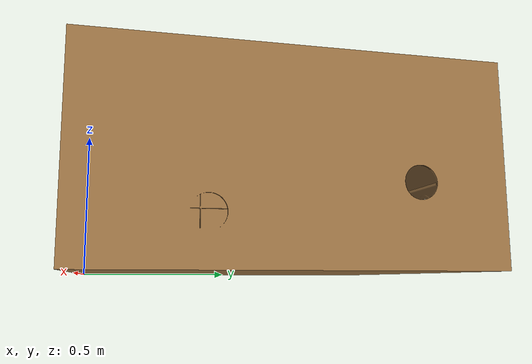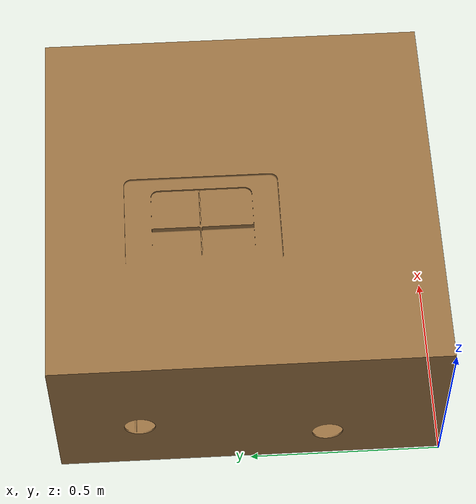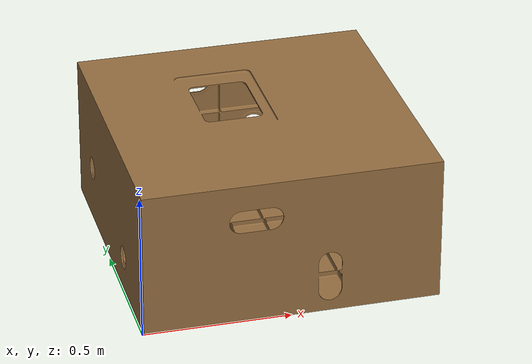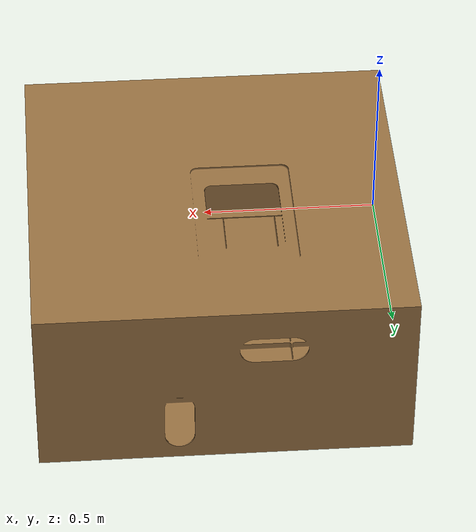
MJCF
<mujoco model="tank_model">
  <compiler angle="degree"/>

  <asset>
    <material name="tank_material" rgba="0.58 0.43 0.25 1"/>
    <mesh name="visual_mesh" file="ZNJQRBS-YOUXIANG.stl" scale="0.001 0.001 0.001"/>
    <!-- Convex approximation of one visible bottom rib: 880 mm long,
         9 mm wide at the base, 3 mm wide at the 23 mm top surface. -->
    <mesh name="bottom_rib_collision_mesh"
      vertex="-0.44 -0.0045 -0.01  0.44 -0.0045 -0.01  0.44 0.0045 -0.01  -0.44 0.0045 -0.01
              -0.44 -0.0015 0.01   0.44 -0.0015 0.01   0.44 0.0015 0.01   -0.44 0.0015 0.01"
      face="0 2 1  0 3 2  4 5 6  4 6 7  0 1 5  0 5 4
            1 2 6  1 6 5  2 3 7  2 7 6  3 0 4  3 4 7"/>
    <mesh name="collision_000" file="collision/youxiang_coacd_000.obj" scale="0.001 0.001 0.001"/>
    <mesh name="collision_001" file="collision/youxiang_coacd_001.obj" scale="0.001 0.001 0.001"/>
    <mesh name="collision_002" file="collision/youxiang_coacd_002.obj" scale="0.001 0.001 0.001"/>
    <mesh name="collision_003" file="collision/youxiang_coacd_003.obj" scale="0.001 0.001 0.001"/>
    <mesh name="collision_004" file="collision/youxiang_coacd_004.obj" scale="0.001 0.001 0.001"/>
    <mesh name="collision_005" file="collision/youxiang_coacd_005.obj" scale="0.001 0.001 0.001"/>
    <mesh name="collision_007" file="collision/youxiang_coacd_007.obj" scale="0.001 0.001 0.001"/>
    <mesh name="collision_008" file="collision/youxiang_coacd_008.obj" scale="0.001 0.001 0.001"/>
    <mesh name="collision_009" file="collision/youxiang_coacd_009.obj" scale="0.001 0.001 0.001"/>
    <mesh name="collision_011" file="collision/youxiang_coacd_011.obj" scale="0.001 0.001 0.001"/>
    <mesh name="collision_012" file="collision/youxiang_coacd_012.obj" scale="0.001 0.001 0.001"/>
    <mesh name="collision_013" file="collision/youxiang_coacd_013.obj" scale="0.001 0.001 0.001"/>
    <mesh name="collision_014" file="collision/youxiang_coacd_014.obj" scale="0.001 0.001 0.001"/>
    <mesh name="collision_015" file="collision/youxiang_coacd_015.obj" scale="0.001 0.001 0.001"/>
    <mesh name="collision_016" file="collision/youxiang_coacd_016.obj" scale="0.001 0.001 0.001"/>
    <mesh name="collision_018" file="collision/youxiang_coacd_018.obj" scale="0.001 0.001 0.001"/>
    <mesh name="collision_019" file="collision/youxiang_coacd_019.obj" scale="0.001 0.001 0.001"/>
    <mesh name="collision_020" file="collision/youxiang_coacd_020.obj" scale="0.001 0.001 0.001"/>
    <mesh name="collision_021" file="collision/youxiang_coacd_021.obj" scale="0.001 0.001 0.001"/>
    <mesh name="collision_022" file="collision/youxiang_coacd_022.obj" scale="0.001 0.001 0.001"/>
    <mesh name="collision_023" file="collision/youxiang_coacd_023.obj" scale="0.001 0.001 0.001"/>
    <mesh name="collision_024" file="collision/youxiang_coacd_024.obj" scale="0.001 0.001 0.001"/>
    <mesh name="collision_026" file="collision/youxiang_coacd_026.obj" scale="0.001 0.001 0.001"/>
    <mesh name="collision_027" file="collision/youxiang_coacd_027.obj" scale="0.001 0.001 0.001"/>
    <mesh name="collision_028" file="collision/youxiang_coacd_028.obj" scale="0.001 0.001 0.001"/>
    <mesh name="collision_029" file="collision/youxiang_coacd_029.obj" scale="0.001 0.001 0.001"/>
    <mesh name="collision_030" file="collision/youxiang_coacd_030.obj" scale="0.001 0.001 0.001"/>
    <mesh name="collision_031" file="collision/youxiang_coacd_031.obj" scale="0.001 0.001 0.001"/>
    <mesh name="collision_032" file="collision/youxiang_coacd_032.obj" scale="0.001 0.001 0.001"/>
    <mesh name="collision_033" file="collision/youxiang_coacd_033.obj" scale="0.001 0.001 0.001"/>
    <mesh name="collision_034" file="collision/youxiang_coacd_034.obj" scale="0.001 0.001 0.001"/>
    <mesh name="collision_035" file="collision/youxiang_coacd_035.obj" scale="0.001 0.001 0.001"/>
    <mesh name="collision_036" file="collision/youxiang_coacd_036.obj" scale="0.001 0.001 0.001"/>
    <mesh name="collision_037" file="collision/youxiang_coacd_037.obj" scale="0.001 0.001 0.001"/>
    <mesh name="collision_038" file="collision/youxiang_coacd_038.obj" scale="0.001 0.001 0.001"/>
    <mesh name="collision_039" file="collision/youxiang_coacd_039.obj" scale="0.001 0.001 0.001"/>
    <mesh name="collision_040" file="collision/youxiang_coacd_040.obj" scale="0.001 0.001 0.001"/>
    <mesh name="collision_041" file="collision/youxiang_coacd_041.obj" scale="0.001 0.001 0.001"/>
    <mesh name="collision_042" file="collision/youxiang_coacd_042.obj" scale="0.001 0.001 0.001"/>
    <mesh name="collision_043" file="collision/youxiang_coacd_043.obj" scale="0.001 0.001 0.001"/>
    <mesh name="collision_044" file="collision/youxiang_coacd_044.obj" scale="0.001 0.001 0.001"/>
    <mesh name="collision_045" file="collision/youxiang_coacd_045.obj" scale="0.001 0.001 0.001"/>
    <mesh name="collision_046" file="collision/youxiang_coacd_046.obj" scale="0.001 0.001 0.001"/>
    <mesh name="collision_047" file="collision/youxiang_coacd_047.obj" scale="0.001 0.001 0.001"/>
    <mesh name="collision_048" file="collision/youxiang_coacd_048.obj" scale="0.001 0.001 0.001"/>
    <mesh name="collision_049" file="collision/youxiang_coacd_049.obj" scale="0.001 0.001 0.001"/>
    <mesh name="collision_050" file="collision/youxiang_coacd_050.obj" scale="0.001 0.001 0.001"/>
    <mesh name="collision_051" file="collision/youxiang_coacd_051.obj" scale="0.001 0.001 0.001"/>
    <mesh name="collision_052" file="collision/youxiang_coacd_052.obj" scale="0.001 0.001 0.001"/>
    <mesh name="collision_053" file="collision/youxiang_coacd_053.obj" scale="0.001 0.001 0.001"/>
    <mesh name="collision_054" file="collision/youxiang_coacd_054.obj" scale="0.001 0.001 0.001"/>
    <mesh name="collision_055" file="collision/youxiang_coacd_055.obj" scale="0.001 0.001 0.001"/>
    <mesh name="collision_056" file="collision/youxiang_coacd_056.obj" scale="0.001 0.001 0.001"/>
    <mesh name="collision_057" file="collision/youxiang_coacd_057.obj" scale="0.001 0.001 0.001"/>
    <mesh name="collision_058" file="collision/youxiang_coacd_058.obj" scale="0.001 0.001 0.001"/>
    <mesh name="collision_059" file="collision/youxiang_coacd_059.obj" scale="0.001 0.001 0.001"/>
    <mesh name="collision_060" file="collision/youxiang_coacd_060.obj" scale="0.001 0.001 0.001"/>
    <mesh name="collision_061" file="collision/youxiang_coacd_061.obj" scale="0.001 0.001 0.001"/>
    <mesh name="collision_062" file="collision/youxiang_coacd_062.obj" scale="0.001 0.001 0.001"/>
    <mesh name="collision_063" file="collision/youxiang_coacd_063.obj" scale="0.001 0.001 0.001"/>
  </asset>

  <worldbody>
    <body name="root">
      <geom name="visual" type="mesh" mesh="visual_mesh" material="tank_material" contype="0" conaffinity="0" group="0"/>
      <!-- The visual base plate spans z=0..0.003 m. Its four COACD floor hulls
           (006, 010, 017, 025) rise as high as 0.033 m and cannot be used as
           the support surface for free objects. -->
      <geom name="bottom_collision" type="box" pos="0.5 0.5 -0.047"
        size="0.5 0.5 0.05" group="3"/>
      <geom name="bottom_rib_horizontal_0" type="mesh" mesh="bottom_rib_collision_mesh"
        pos="0.505 0.2 0.013" group="3"/>
      <geom name="bottom_rib_horizontal_1" type="mesh" mesh="bottom_rib_collision_mesh"
        pos="0.505 0.4 0.013" group="3"/>
      <geom name="bottom_rib_horizontal_2" type="mesh" mesh="bottom_rib_collision_mesh"
        pos="0.505 0.6 0.013" group="3"/>
      <geom name="bottom_rib_horizontal_3" type="mesh" mesh="bottom_rib_collision_mesh"
        pos="0.505 0.8 0.013" group="3"/>
      <geom name="bottom_rib_vertical_0" type="mesh" mesh="bottom_rib_collision_mesh"
        pos="0.145 0.5 0.013" euler="0 0 90" group="3"/>
      <geom name="bottom_rib_vertical_1" type="mesh" mesh="bottom_rib_collision_mesh"
        pos="0.295 0.5 0.013" euler="0 0 90" group="3"/>
      <geom name="bottom_rib_vertical_2" type="mesh" mesh="bottom_rib_collision_mesh"
        pos="0.445 0.5 0.013" euler="0 0 90" group="3"/>
      <geom name="bottom_rib_vertical_3" type="mesh" mesh="bottom_rib_collision_mesh"
        pos="0.565 0.5 0.013" euler="0 0 90" group="3"/>
      <geom name="bottom_rib_vertical_4" type="mesh" mesh="bottom_rib_collision_mesh"
        pos="0.715 0.5 0.013" euler="0 0 90" group="3"/>
      <geom name="bottom_rib_vertical_5" type="mesh" mesh="bottom_rib_collision_mesh"
        pos="0.865 0.5 0.013" euler="0 0 90" group="3"/>
      <geom name="collision_000" type="mesh" mesh="collision_000" group="3"/>
      <geom name="collision_001" type="mesh" mesh="collision_001" group="3"/>
      <geom name="collision_002" type="mesh" mesh="collision_002" group="3"/>
      <geom name="collision_003" type="mesh" mesh="collision_003" group="3"/>
      <geom name="collision_004" type="mesh" mesh="collision_004" group="3"/>
      <geom name="collision_005" type="mesh" mesh="collision_005" group="3"/>
      <geom name="collision_007" type="mesh" mesh="collision_007" group="3"/>
      <geom name="collision_008" type="mesh" mesh="collision_008" group="3"/>
      <geom name="collision_009" type="mesh" mesh="collision_009" group="3"/>
      <geom name="collision_011" type="mesh" mesh="collision_011" group="3"/>
      <geom name="collision_012" type="mesh" mesh="collision_012" group="3"/>
      <geom name="collision_013" type="mesh" mesh="collision_013" group="3"/>
      <geom name="collision_014" type="mesh" mesh="collision_014" group="3"/>
      <geom name="collision_015" type="mesh" mesh="collision_015" group="3"/>
      <geom name="collision_016" type="mesh" mesh="collision_016" group="3"/>
      <geom name="collision_018" type="mesh" mesh="collision_018" group="3"/>
      <geom name="collision_019" type="mesh" mesh="collision_019" group="3"/>
      <geom name="collision_020" type="mesh" mesh="collision_020" group="3"/>
      <geom name="collision_021" type="mesh" mesh="collision_021" group="3"/>
      <geom name="collision_022" type="mesh" mesh="collision_022" group="3"/>
      <geom name="collision_023" type="mesh" mesh="collision_023" group="3"/>
      <geom name="collision_024" type="mesh" mesh="collision_024" group="3"/>
      <geom name="collision_026" type="mesh" mesh="collision_026" group="3"/>
      <geom name="collision_027" type="mesh" mesh="collision_027" group="3"/>
      <geom name="collision_028" type="mesh" mesh="collision_028" group="3"/>
      <geom name="collision_029" type="mesh" mesh="collision_029" group="3"/>
      <geom name="collision_030" type="mesh" mesh="collision_030" group="3"/>
      <geom name="collision_031" type="mesh" mesh="collision_031" group="3"/>
      <geom name="collision_032" type="mesh" mesh="collision_032" group="3"/>
      <geom name="collision_033" type="mesh" mesh="collision_033" group="3"/>
      <geom name="collision_034" type="mesh" mesh="collision_034" group="3"/>
      <geom name="collision_035" type="mesh" mesh="collision_035" group="3"/>
      <geom name="collision_036" type="mesh" mesh="collision_036" group="3"/>
      <geom name="collision_037" type="mesh" mesh="collision_037" group="3"/>
      <geom name="collision_038" type="mesh" mesh="collision_038" group="3"/>
      <geom name="collision_039" type="mesh" mesh="collision_039" group="3"/>
      <geom name="collision_040" type="mesh" mesh="collision_040" group="3"/>
      <geom name="collision_041" type="mesh" mesh="collision_041" group="3"/>
      <geom name="collision_042" type="mesh" mesh="collision_042" group="3"/>
      <geom name="collision_043" type="mesh" mesh="collision_043" group="3"/>
      <geom name="collision_044" type="mesh" mesh="collision_044" group="3"/>
      <geom name="collision_045" type="mesh" mesh="collision_045" group="3"/>
      <geom name="collision_046" type="mesh" mesh="collision_046" group="3"/>
      <geom name="collision_047" type="mesh" mesh="collision_047" group="3"/>
      <geom name="collision_048" type="mesh" mesh="collision_048" group="3"/>
      <geom name="collision_049" type="mesh" mesh="collision_049" group="3"/>
      <geom name="collision_050" type="mesh" mesh="collision_050" group="3"/>
      <geom name="collision_051" type="mesh" mesh="collision_051" group="3"/>
      <geom name="collision_052" type="mesh" mesh="collision_052" group="3"/>
      <geom name="collision_053" type="mesh" mesh="collision_053" group="3"/>
      <geom name="collision_054" type="mesh" mesh="collision_054" group="3"/>
      <geom name="collision_055" type="mesh" mesh="collision_055" group="3"/>
      <geom name="collision_056" type="mesh" mesh="collision_056" group="3"/>
      <geom name="collision_057" type="mesh" mesh="collision_057" group="3"/>
      <geom name="collision_058" type="mesh" mesh="collision_058" group="3"/>
      <geom name="collision_059" type="mesh" mesh="collision_059" group="3"/>
      <geom name="collision_060" type="mesh" mesh="collision_060" group="3"/>
      <geom name="collision_061" type="mesh" mesh="collision_061" group="3"/>
      <geom name="collision_062" type="mesh" mesh="collision_062" group="3"/>
      <geom name="collision_063" type="mesh" mesh="collision_063" group="3"/>
    </body>
  </worldbody>
</mujoco>
